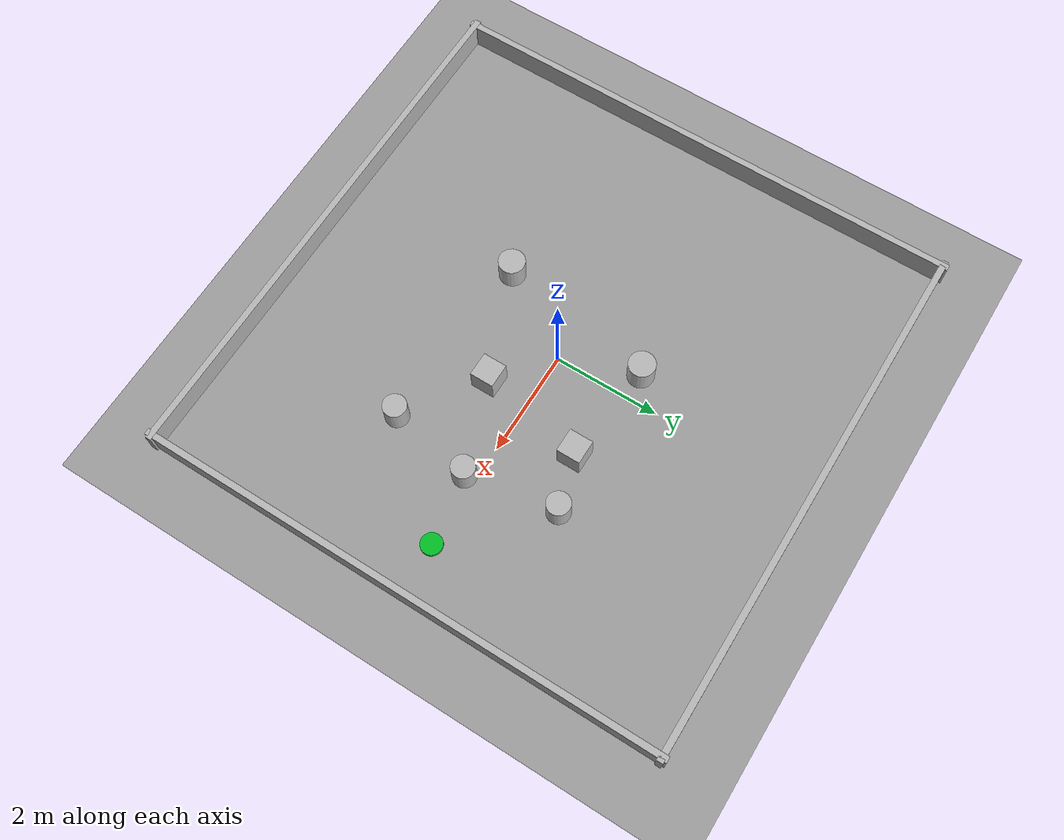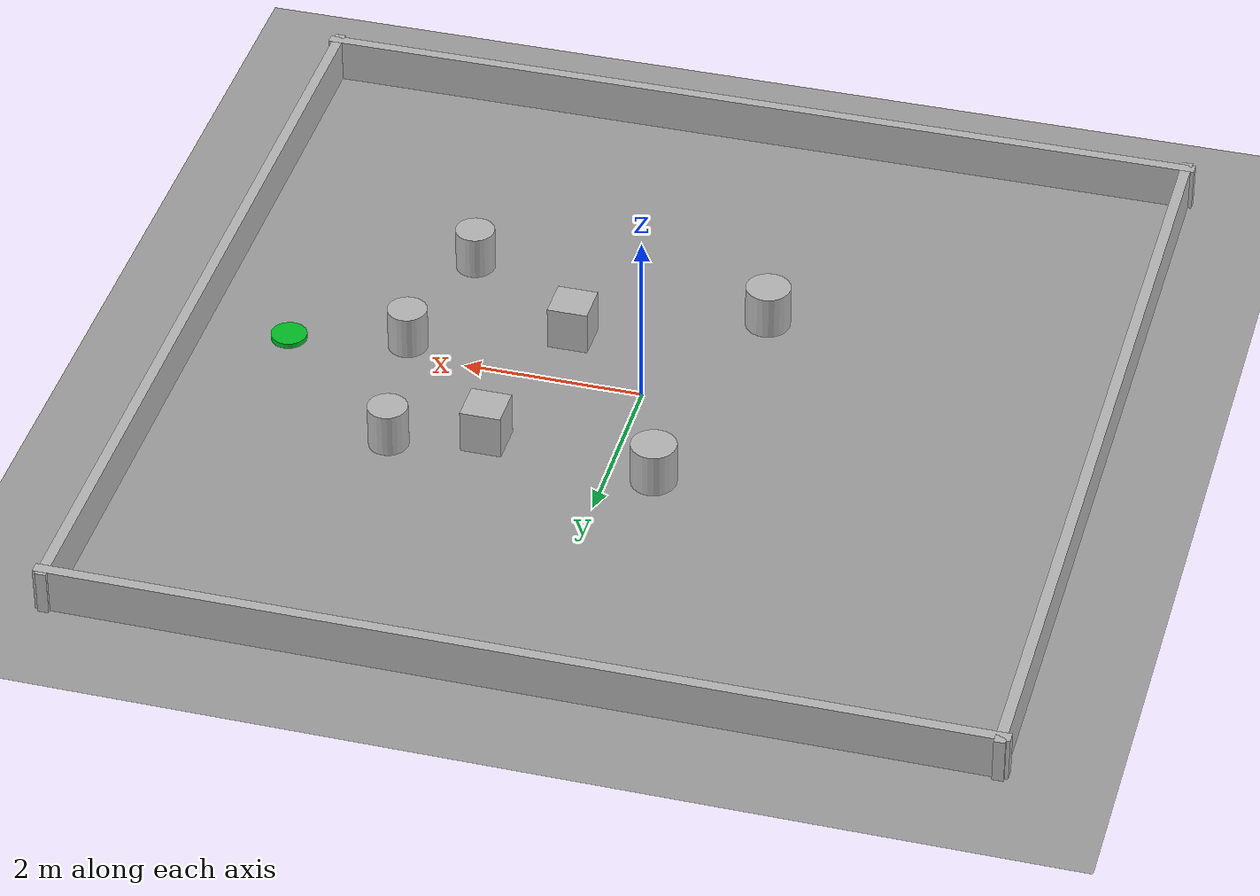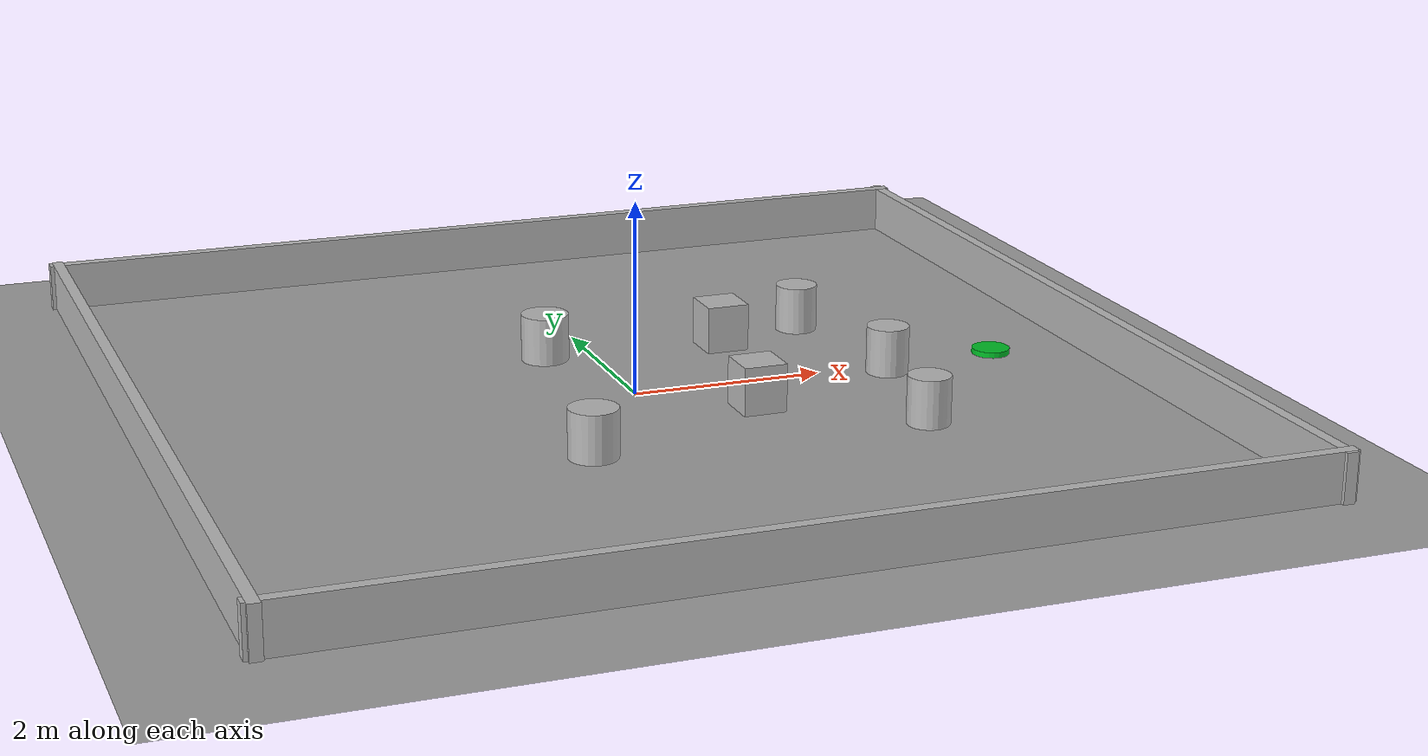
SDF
<?xml version="1.0"?>
<sdf version="1.6">
  <world name="meta_arena">
    <plugin name="gazebo_ros_state" filename="libgazebo_ros_state.so"/>

    <include>
      <uri>model://sun</uri>
    </include>

    <model name="ground_plane">
      <static>true</static>
      <link name="link">
        <collision name="collision">
          <geometry>
            <plane>
              <normal>0 0 1</normal>
              <size>12 12</size>
            </plane>
          </geometry>
        </collision>
        <visual name="visual">
          <geometry>
            <plane>
              <normal>0 0 1</normal>
              <size>12 12</size>
            </plane>
          </geometry>
          <material>
            <ambient>0.62 0.62 0.62 1</ambient>
            <diffuse>0.62 0.62 0.62 1</diffuse>
          </material>
        </visual>
      </link>
    </model>

    <model name="target_goal">
      <static>true</static>
      <pose>4.0 0.0 0.03 0 0 0</pose>
      <link name="link">
        <visual name="visual">
          <geometry>
            <cylinder>
              <radius>0.20</radius>
              <length>0.06</length>
            </cylinder>
          </geometry>
          <material>
            <ambient>0.0 0.75 0.15 1</ambient>
            <diffuse>0.0 0.75 0.15 1</diffuse>
          </material>
        </visual>
      </link>
    </model>

    <model name="wall_north">
      <static>true</static>
      <pose>0 5 0.25 0 0 0</pose>
      <link name="link">
        <collision name="collision"><geometry><box><size>10.2 0.12 0.5</size></box></geometry></collision>
        <visual name="visual"><geometry><box><size>10.2 0.12 0.5</size></box></geometry></visual>
      </link>
    </model>
    <model name="wall_south">
      <static>true</static>
      <pose>0 -5 0.25 0 0 0</pose>
      <link name="link">
        <collision name="collision"><geometry><box><size>10.2 0.12 0.5</size></box></geometry></collision>
        <visual name="visual"><geometry><box><size>10.2 0.12 0.5</size></box></geometry></visual>
      </link>
    </model>
    <model name="wall_east">
      <static>true</static>
      <pose>5 0 0.25 0 0 0</pose>
      <link name="link">
        <collision name="collision"><geometry><box><size>0.12 10.2 0.5</size></box></geometry></collision>
        <visual name="visual"><geometry><box><size>0.12 10.2 0.5</size></box></geometry></visual>
      </link>
    </model>
    <model name="wall_west">
      <static>true</static>
      <pose>-5 0 0.25 0 0 0</pose>
      <link name="link">
        <collision name="collision"><geometry><box><size>0.12 10.2 0.5</size></box></geometry></collision>
        <visual name="visual"><geometry><box><size>0.12 10.2 0.5</size></box></geometry></visual>
      </link>
    </model>

    <model name="obstacle_low_1">
      <static>true</static>
      <pose>-1.0 -1.6 0.25 0 0 0</pose>
      <link name="link">
        <collision name="collision"><geometry><cylinder><radius>0.25</radius><length>0.5</length></cylinder></geometry></collision>
        <visual name="visual"><geometry><cylinder><radius>0.25</radius><length>0.5</length></cylinder></geometry></visual>
      </link>
    </model>
    <model name="obstacle_low_2">
      <static>true</static>
      <pose>-0.5 1.4 0.25 0 0 0</pose>
      <link name="link">
        <collision name="collision"><geometry><cylinder><radius>0.25</radius><length>0.5</length></cylinder></geometry></collision>
        <visual name="visual"><geometry><cylinder><radius>0.25</radius><length>0.5</length></cylinder></geometry></visual>
      </link>
    </model>
    <model name="obstacle_mid_1">
      <static>true</static>
      <pose>1.0 -0.8 0.25 0 0 0</pose>
      <link name="link">
        <collision name="collision"><geometry><box><size>0.45 0.45 0.5</size></box></geometry></collision>
        <visual name="visual"><geometry><box><size>0.45 0.45 0.5</size></box></geometry></visual>
      </link>
    </model>
    <model name="obstacle_mid_2">
      <static>true</static>
      <pose>1.4 1.2 0.25 0 0 0</pose>
      <link name="link">
        <collision name="collision"><geometry><box><size>0.45 0.45 0.5</size></box></geometry></collision>
        <visual name="visual"><geometry><box><size>0.45 0.45 0.5</size></box></geometry></visual>
      </link>
    </model>
    <model name="obstacle_high_1">
      <static>true</static>
      <pose>2.4 -1.8 0.25 0 0 0</pose>
      <link name="link">
        <collision name="collision"><geometry><cylinder><radius>0.22</radius><length>0.5</length></cylinder></geometry></collision>
        <visual name="visual"><geometry><cylinder><radius>0.22</radius><length>0.5</length></cylinder></geometry></visual>
      </link>
    </model>
    <model name="obstacle_high_2">
      <static>true</static>
      <pose>2.7 -0.2 0.25 0 0 0</pose>
      <link name="link">
        <collision name="collision"><geometry><cylinder><radius>0.22</radius><length>0.5</length></cylinder></geometry></collision>
        <visual name="visual"><geometry><cylinder><radius>0.22</radius><length>0.5</length></cylinder></geometry></visual>
      </link>
    </model>
    <model name="obstacle_high_3">
      <static>true</static>
      <pose>2.4 1.5 0.25 0 0 0</pose>
      <link name="link">
        <collision name="collision"><geometry><cylinder><radius>0.22</radius><length>0.5</length></cylinder></geometry></collision>
        <visual name="visual"><geometry><cylinder><radius>0.22</radius><length>0.5</length></cylinder></geometry></visual>
      </link>
    </model>
  </world>
</sdf>
